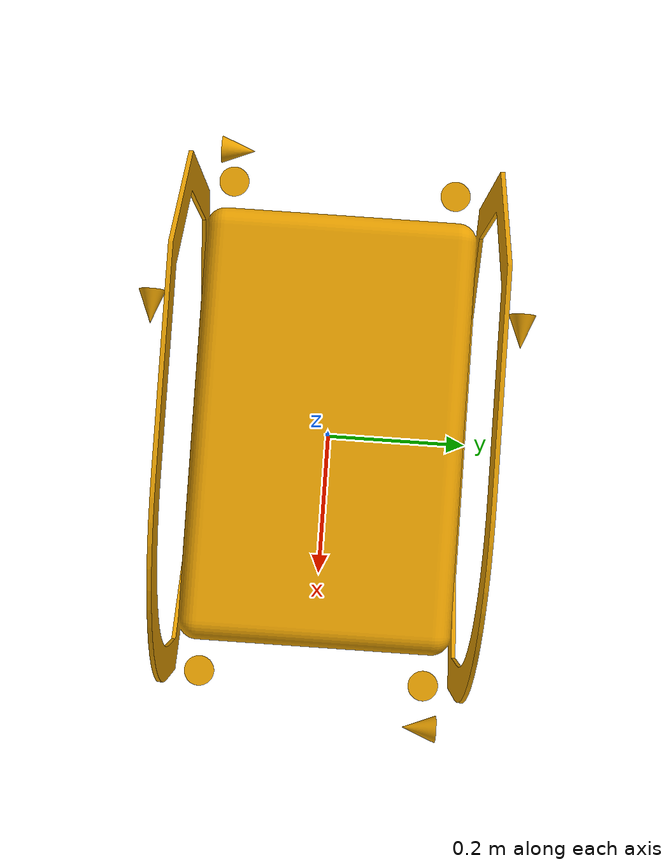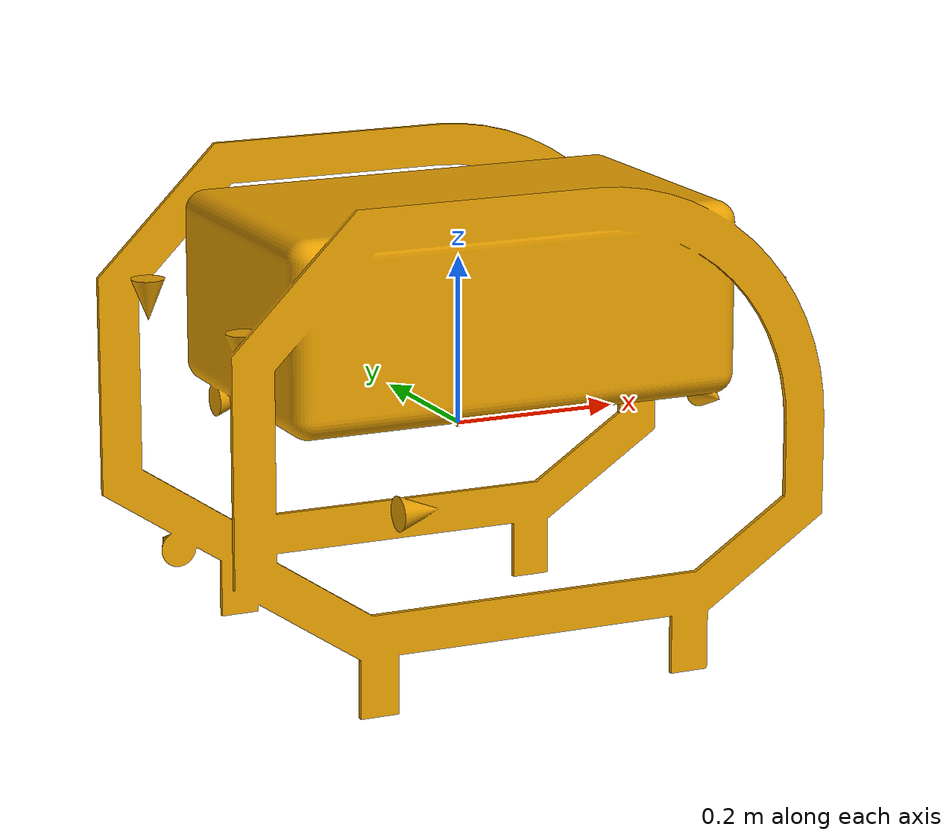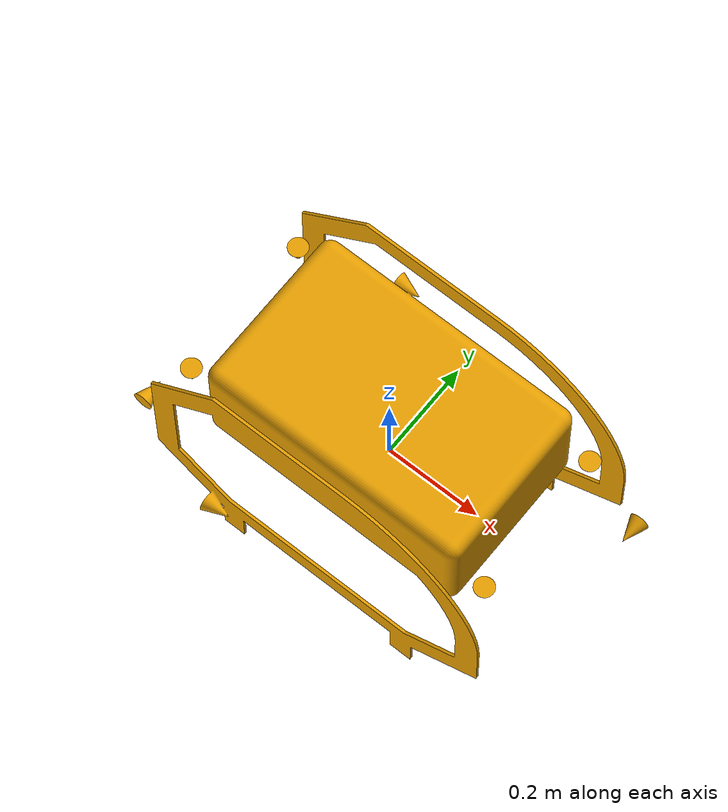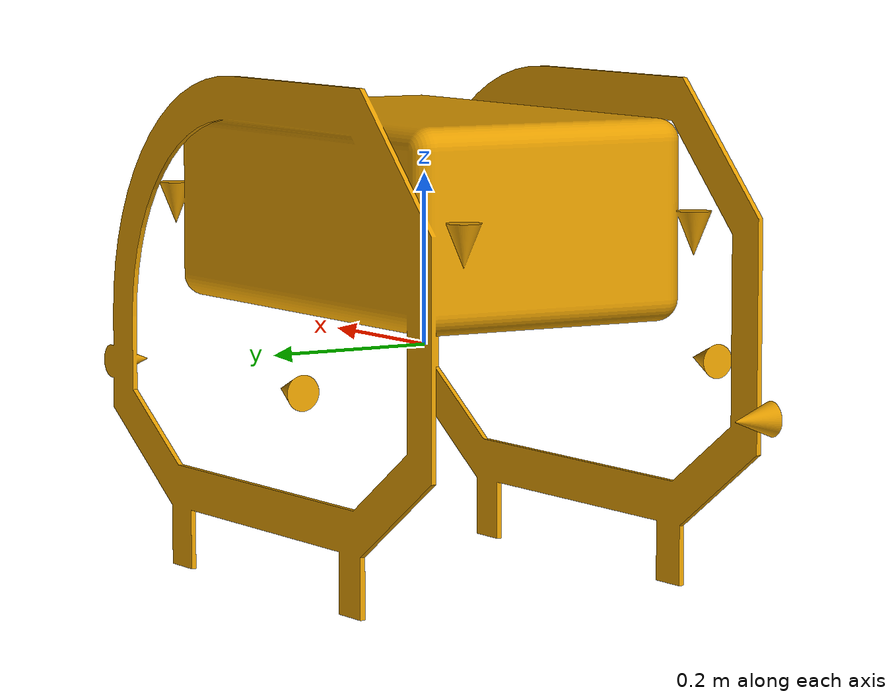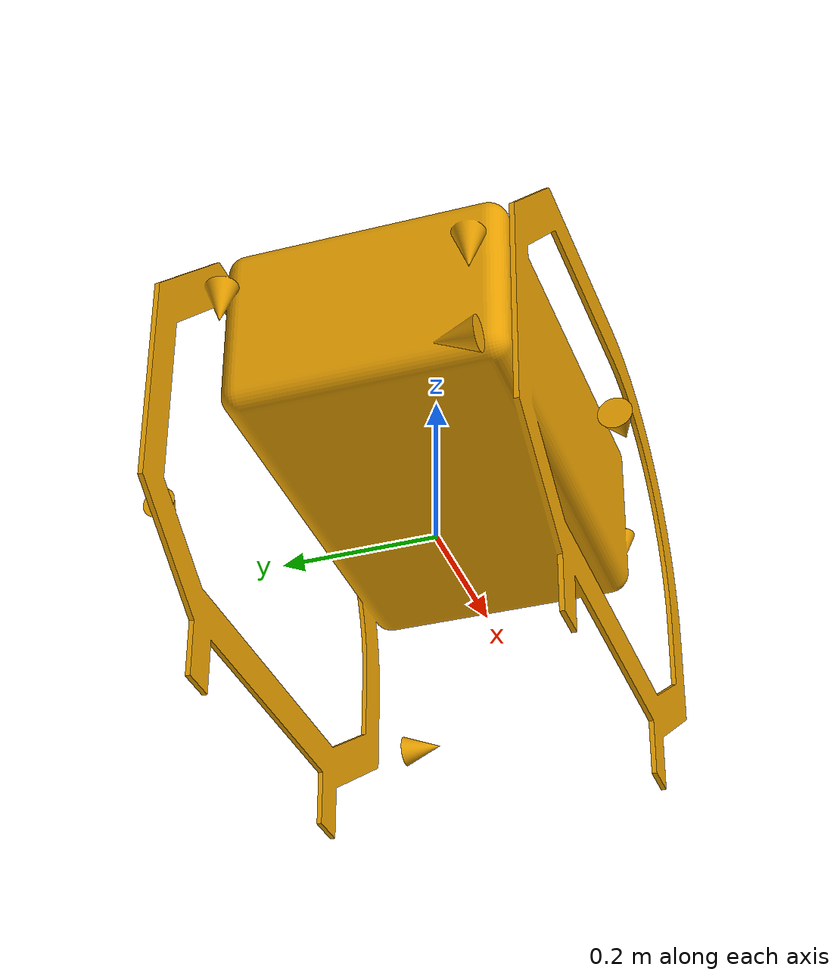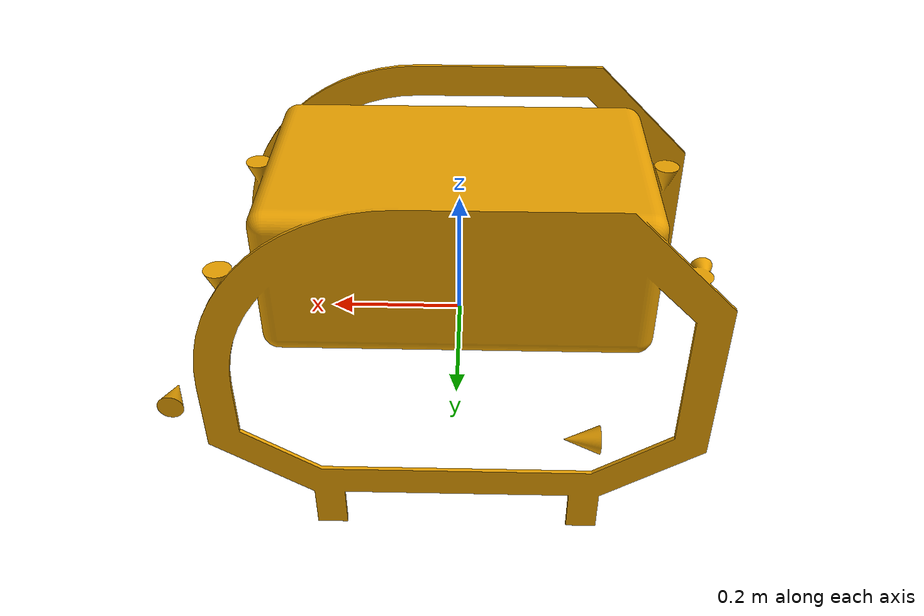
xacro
<?xml version="1.0"?>

<robot name="zeabus_pelican" xmlns:xacro="http://ros.org/wiki/xacro">
    <!-- Included URDF Files -->
    <xacro:include filename="$(find zeabus_description)/urdf/pelican_base.urdf.xacro" />

    <!-- Instantiate pelican_base_macro once (has no parameters atm) -->
    <xacro:pelican_base_macro />
</robot>

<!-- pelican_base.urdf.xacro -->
<robot xmlns:xacro="http://www.ros.org/wiki/xacro">
	<xacro:property name="M_PI" value="3.1415926535897931"/>
	<xacro:macro name="pelican_base_macro">
		<link name="base_link">
			<inertial>
				<mass value="40.0"/>
				<origin xyz="0 0 0"/>
				<inertia ixx="1.779166667" ixy="0.0" ixz="0.0" iyy="2.916666667" iyz="0.0" izz="2.595833333"/>
			</inertial>
			<visual>
				<origin rpy="${M_PI/2} 0 ${M_PI}" xyz="0 0 0"/>
				<geometry>
					<mesh filename="package://zeabus_description/meshes/perlican_base.dae"/>
				</geometry>
			</visual>
			<collision>
				<origin rpy="${M_PI/2} 0 ${M_PI}" xyz="0 0 0"/>
				<geometry>
					<mesh filename="package://zeabus_description/meshes/perlican_base.stl"/>
				</geometry>
			</collision>
		</link>
	</xacro:macro>
</robot>
